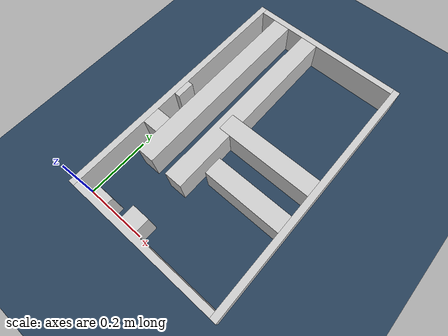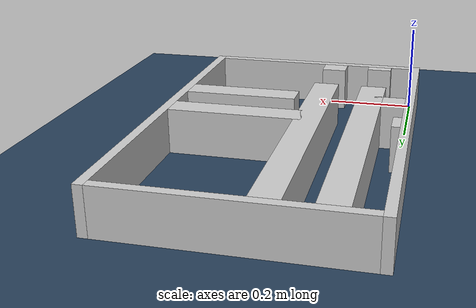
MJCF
<?xml version="1.0" ?>
<mujoco model="generated_real_template">
  <compiler angle="degree"/>
  <option timestep="0.002" integrator="implicitfast" iterations="100" cone="elliptic"/>
  <default>
    <geom density="1"/>
  </default>
  <asset>
    <texture builtin="gradient" height="3072" rgb1="0.3 0.5 0.7" rgb2="0 0 0" type="skybox" width="512"/>
    <texture builtin="checker" height="300" mark="edge" markrgb="0.8 0.8 0.8" name="groundplane" rgb1="0.2 0.3 0.4" rgb2="0.1 0.2 0.3" type="2d" width="300"/>
    <material name="groundplane" reflectance="0.2" texrepeat="5 5" texture="groundplane" texuniform="true"/>
  </asset>
  <worldbody>
    <light dir="0 0 -1" directional="true" pos="0 0 1.5"/>
    <geom name="floor" type="plane" condim="4" friction="0.5 0.005 0.001" material="groundplane" size="0 0 0.05"/>
    <body name="walls">
      <geom name="wall_boundary_left" type="box" condim="4" friction="1.0 0.005 0.0001" rgba="0.8 0.8 0.8 1" pos="-0.010000 0.387500 0.050000" euler="0 0 0.000000" size="0.010000 0.407500 0.050000"/>
      <geom name="wall_boundary_right" type="box" condim="4" friction="1.0 0.005 0.0001" rgba="0.8 0.8 0.8 1" pos="0.500000 0.387500 0.050000" euler="0 0 0.000000" size="0.010000 0.407500 0.050000"/>
      <geom name="wall_boundary_bottom" type="box" condim="4" friction="1.0 0.005 0.0001" rgba="0.8 0.8 0.8 1" pos="0.245000 -0.010000 0.050000" euler="0 0 0.000000" size="0.245000 0.010000 0.050000"/>
      <geom name="wall_boundary_top" type="box" condim="4" friction="1.0 0.005 0.0001" rgba="0.8 0.8 0.8 1" pos="0.245000 0.785000 0.050000" euler="0 0 0.000000" size="0.245000 0.010000 0.050000"/>
      <geom name="wall_inner_1_1" type="box" condim="4" friction="1.0 0.005 0.0001" rgba="0.8 0.8 0.8 1" pos="0.188961 0.023828 0.050000" euler="0 0 90.000000" size="0.023828 0.028500 0.050000"/>
      <geom name="wall_inner_1_2" type="box" condim="4" friction="1.0 0.005 0.0001" rgba="0.8 0.8 0.8 1" pos="0.188961 0.468263 0.050000" euler="0 0 90.000000" size="0.306737 0.028500 0.050000"/>
      <geom name="wall_inner_2_1" type="box" condim="4" friction="1.0 0.005 0.0001" rgba="0.8 0.8 0.8 1" pos="0.034139 0.262260 0.050000" euler="0 0 0.000000" size="0.034139 0.028500 0.050000"/>
      <geom name="wall_inner_2_2" type="box" condim="4" friction="1.0 0.005 0.0001" rgba="0.8 0.8 0.8 1" pos="0.365354 0.262260 0.050000" euler="0 0 0.000000" size="0.124646 0.028500 0.050000"/>
      <geom name="wall_inner_3_1" type="box" condim="4" friction="1.0 0.005 0.0001" rgba="0.8 0.8 0.8 1" pos="0.077975 0.012310 0.050000" euler="0 0 90.000000" size="0.012310 0.028500 0.050000"/>
      <geom name="wall_inner_3_2" type="box" condim="4" friction="1.0 0.005 0.0001" rgba="0.8 0.8 0.8 1" pos="0.077975 0.469289 0.050000" euler="0 0 90.000000" size="0.305711 0.028500 0.050000"/>
      <geom name="wall_inner_4_1" type="box" condim="4" friction="1.0 0.005 0.0001" rgba="0.8 0.8 0.8 1" pos="0.009003 0.387625 0.050000" euler="0 0 0.000000" size="0.009003 0.028500 0.050000"/>
      <geom name="wall_inner_4_2" type="box" condim="4" friction="1.0 0.005 0.0001" rgba="0.8 0.8 0.8 1" pos="0.334668 0.387625 0.050000" euler="0 0 0.000000" size="0.155332 0.028500 0.050000"/>
    </body>
  </worldbody>
</mujoco>
